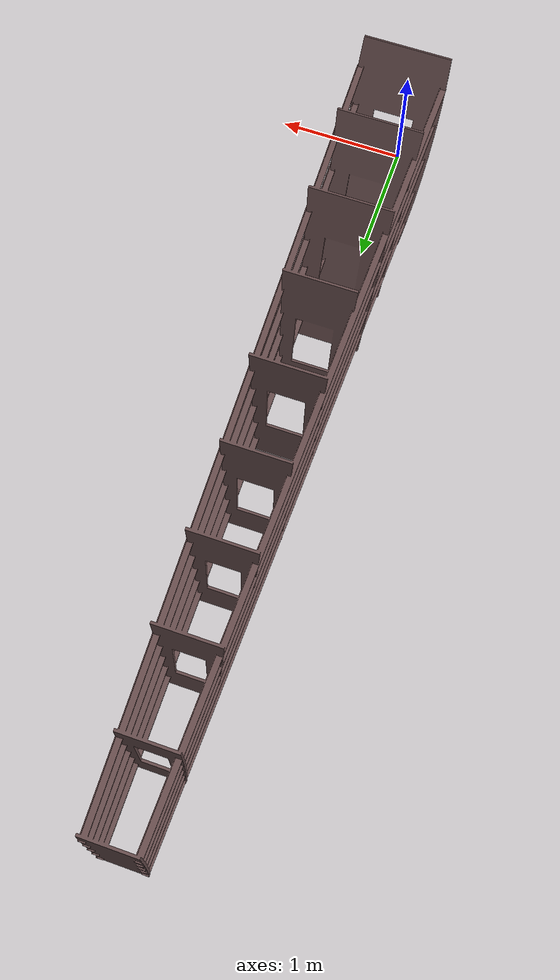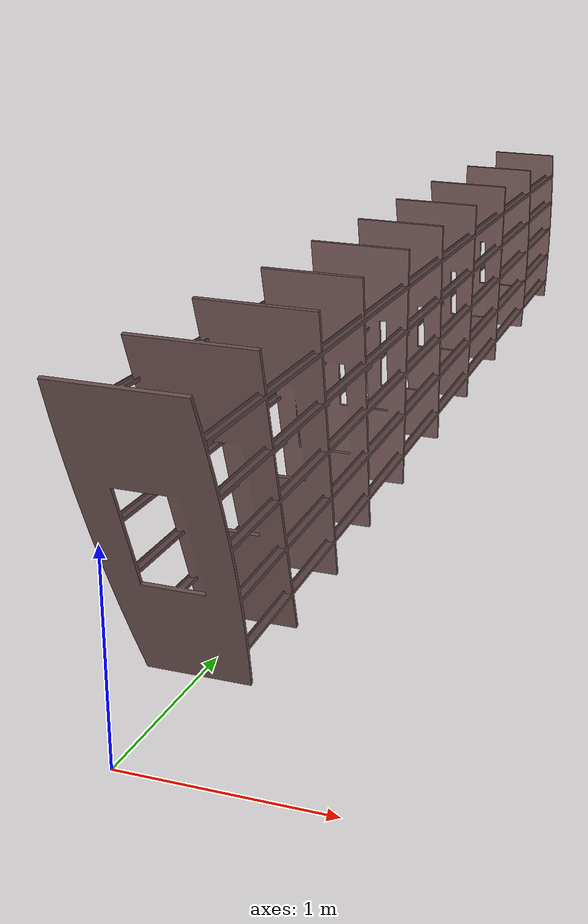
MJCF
<mujoco model="vertical_stabilizer">

    <!-- NOTE: .obj are exported in cm; .stl are exported in .mm (if this is the units in fusion); mujoco expects meters. Scale accordingly. -->

    <asset>
        <mesh name="vertical_stabilizer_mesh" file="meshes/v_stabilizer.stl" scale="0.001 0.001 0.001"/>
    </asset>

    <worldbody>
        <body name="vertical_stabilizer" pos="0 0.5 0.8">
            <geom type="mesh" mesh="vertical_stabilizer_mesh" rgba="0.4 0.3 0.3 1.0" euler="0 0 0" />
        </body>
    </worldbody>

</mujoco>
